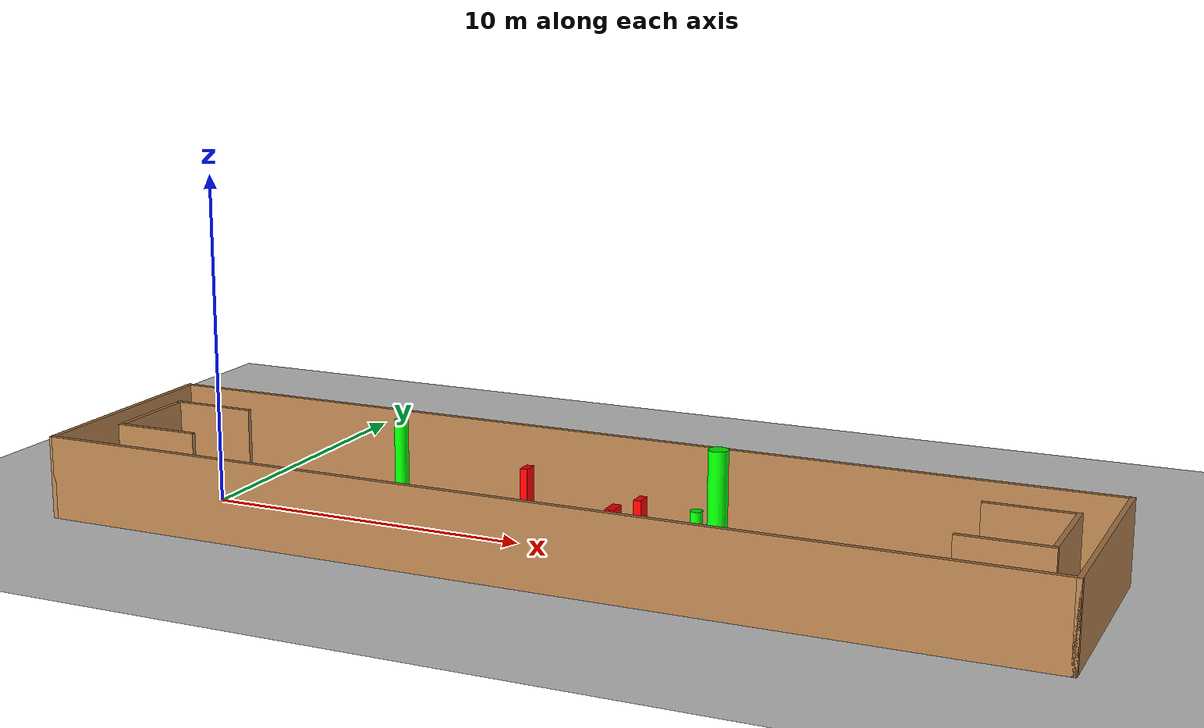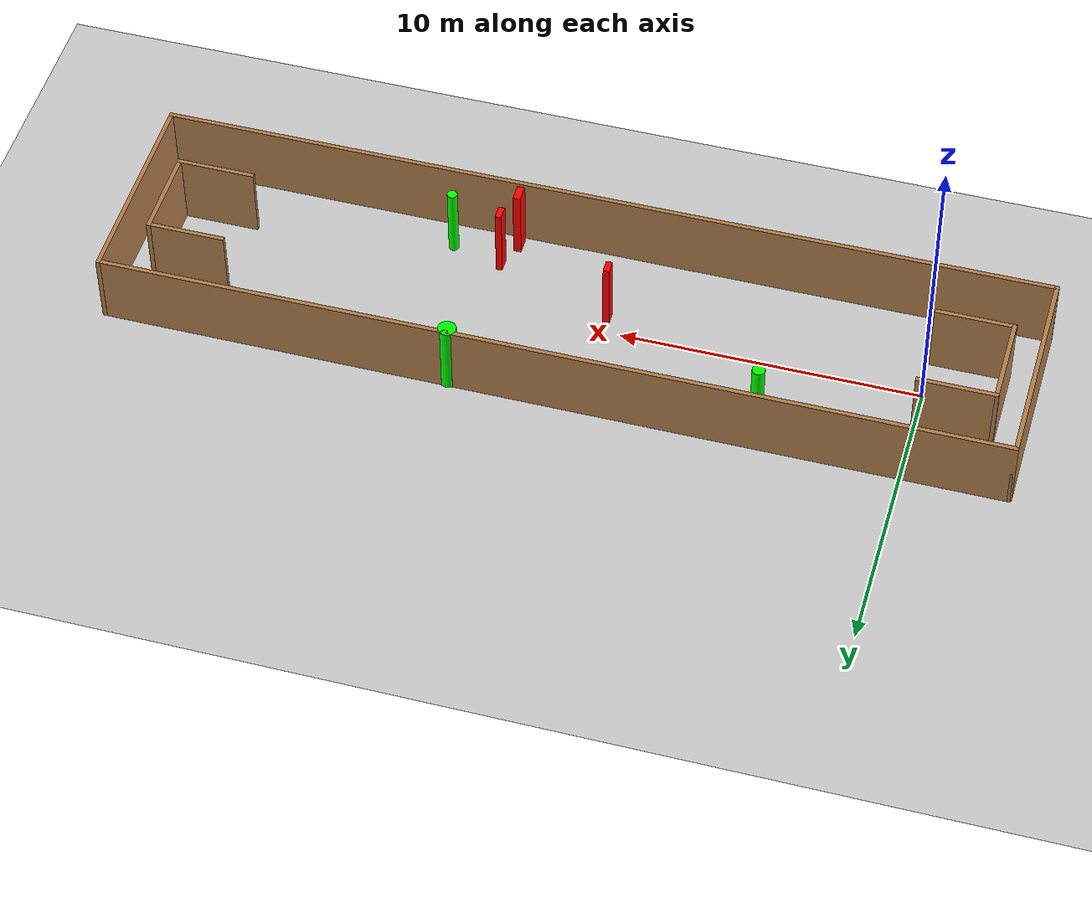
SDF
<sdf version="1.7">
 <world name="default">
  <light name="sun" type="directional">
   <pose>0 0 10 0 -0 0</pose>
   <diffuse>0.8 0.8 0.8 1</diffuse>
   <specular>0.2 0.2 0.2 1</specular>
   <attenuation>
    <range>1000</range>
    <constant>0.9</constant>
    <linear>0.01</linear>
    <quadratic>0.001</quadratic>
   </attenuation>
   <direction>-0.5 0.1 -0.9</direction>
   <spot><inner_angle>0</inner_angle><outer_angle>0</outer_angle><falloff>0</falloff></spot>
  </light>
  <model name="ground_plane">
   <static>1</static>
   <link name="link">
    <collision name="collision">
     <geometry><plane><normal>0 0 1</normal><size>100 100</size></plane></geometry>
     <surface>
      <contact><collide_bitmask>65535</collide_bitmask></contact>
      <friction><ode><mu>100</mu><mu2>50</mu2></ode></friction>
     </surface>
    </collision>
    <visual name="visual">
     <cast_shadows>0</cast_shadows>
     <geometry><plane><normal>0 0 1</normal><size>100 100</size></plane></geometry>
     <material>
      <script><uri>file://media/materials/scripts/gazebo.material</uri><name>Gazebo/Grey</name></script>
     </material>
    </visual>
   </link>
  </model>
  <gravity>0 0 -9.8</gravity>
  <magnetic_field>6e-06 2.3e-05 -4.2e-05</magnetic_field>
  <atmosphere type="adiabatic"/>
  <physics type="ode">
   <max_step_size>0.001</max_step_size>
   <real_time_factor>1</real_time_factor>
   <real_time_update_rate>1000</real_time_update_rate>
  </physics>
  <scene><ambient>0.4 0.4 0.4 1</ambient><background>0.7 0.7 0.7 1</background><shadows>1</shadows></scene>
  <spherical_coordinates>
   <surface_model>EARTH_WGS84</surface_model>
   <latitude_deg>0</latitude_deg>
   <longitude_deg>0</longitude_deg>
   <elevation>0</elevation>
   <heading_deg>0</heading_deg>
  </spherical_coordinates>
  <model name="my_base_walls">
   <link name="Wall_0">
    <collision name="Wall_0_Collision">
     <geometry><box><size>7.15 0.15 2.5</size></box></geometry>
     <pose>0 0 1.25 0 -0 0</pose>
    </collision>
    <visual name="Wall_0_Visual">
     <pose>0 0 1.25 0 -0 0</pose>
     <geometry><box><size>7.15 0.15 2.5</size></box></geometry>
     <material>
      <script><uri>file://media/materials/scripts/gazebo.material</uri><name>Gazebo/Wood</name></script>
      <ambient>1 1 1 1</ambient>
     </material>
     <meta><layer>0</layer></meta>
    </visual>
    <pose>-15 0 0 0 -0 1.5708</pose>
   </link>
   <link name="Wall_10">
    <collision name="Wall_10_Collision">
     <geometry><box><size>2.65 0.15 2.5</size></box></geometry>
     <pose>0 0 1.25 0 -0 0</pose>
    </collision>
    <visual name="Wall_10_Visual">
     <pose>0 0 1.25 0 -0 0</pose>
     <geometry><box><size>2.65 0.15 2.5</size></box></geometry>
     <material>
      <script><uri>file://media/materials/scripts/gazebo.material</uri><name>Gazebo/Wood</name></script>
      <ambient>1 1 1 1</ambient>
     </material>
     <meta><layer>0</layer></meta>
    </visual>
    <pose>-12.75 -1.5 0 0 -0 0</pose>
   </link>
   <link name="Wall_12">
    <collision name="Wall_12_Collision">
     <geometry><box><size>2.65 0.15 2.5</size></box></geometry>
     <pose>0 0 1.25 0 -0 0</pose>
    </collision>
    <visual name="Wall_12_Visual">
     <pose>0 0 1.25 0 -0 0</pose>
     <geometry><box><size>2.65 0.15 2.5</size></box></geometry>
     <material>
      <script><uri>file://media/materials/scripts/gazebo.material</uri><name>Gazebo/Wood</name></script>
      <ambient>1 1 1 1</ambient>
     </material>
     <meta><layer>0</layer></meta>
    </visual>
    <pose>-12.75 1.5 0 0 -0 0</pose>
   </link>
   <link name="Wall_14">
    <collision name="Wall_14_Collision">
     <geometry><box><size>3.15 0.15 2.5</size></box></geometry>
     <pose>0 0 1.25 0 -0 0</pose>
    </collision>
    <visual name="Wall_14_Visual">
     <pose>0 0 1.25 0 -0 0</pose>
     <geometry><box><size>3.15 0.15 2.5</size></box></geometry>
     <material>
      <script><uri>file://media/materials/scripts/gazebo.material</uri><name>Gazebo/Wood</name></script>
      <ambient>1 1 1 1</ambient>
     </material>
     <meta><layer>0</layer></meta>
    </visual>
    <pose>14 0 0 0 -0 -1.5708</pose>
   </link>
   <link name="Wall_15">
    <collision name="Wall_15_Collision">
     <geometry><box><size>2.65 0.15 2.5</size></box></geometry>
     <pose>0 0 1.25 0 -0 0</pose>
    </collision>
    <visual name="Wall_15_Visual">
     <pose>0 0 1.25 0 -0 0</pose>
     <geometry><box><size>2.65 0.15 2.5</size></box></geometry>
     <material>
      <script><uri>file://media/materials/scripts/gazebo.material</uri><name>Gazebo/Wood</name></script>
      <ambient>1 1 1 1</ambient>
     </material>
     <meta><layer>0</layer></meta>
    </visual>
    <pose>12.75 -1.5 0 0 -0 3.14159</pose>
   </link>
   <link name="Wall_17">
    <collision name="Wall_17_Collision">
     <geometry><box><size>2.65 0.15 2.5</size></box></geometry>
     <pose>0 0 1.25 0 -0 0</pose>
    </collision>
    <visual name="Wall_17_Visual">
     <pose>0 0 1.25 0 -0 0</pose>
     <geometry><box><size>2.65 0.15 2.5</size></box></geometry>
     <material>
      <script><uri>file://media/materials/scripts/gazebo.material</uri><name>Gazebo/Wood</name></script>
      <ambient>1 1 1 1</ambient>
     </material>
     <meta><layer>0</layer></meta>
    </visual>
    <pose>12.75 1.5 0 0 -0 3.14159</pose>
   </link>
   <link name="Wall_2">
    <collision name="Wall_2_Collision">
     <geometry><box><size>30.15 0.15 2.5</size></box></geometry>
     <pose>0 0 1.25 0 -0 0</pose>
    </collision>
    <visual name="Wall_2_Visual">
     <pose>0 0 1.25 0 -0 0</pose>
     <geometry><box><size>30.15 0.15 2.5</size></box></geometry>
     <material>
      <script><uri>file://media/materials/scripts/gazebo.material</uri><name>Gazebo/Wood</name></script>
      <ambient>1 1 1 1</ambient>
     </material>
     <meta><layer>0</layer></meta>
    </visual>
    <pose>-0 -3.5 0 0 -0 0</pose>
   </link>
   <link name="Wall_4">
    <collision name="Wall_4_Collision">
     <geometry><box><size>30.15 0.15 2.5</size></box></geometry>
     <pose>0 0 1.25 0 -0 0</pose>
    </collision>
    <visual name="Wall_4_Visual">
     <pose>0 0 1.25 0 -0 0</pose>
     <geometry><box><size>30.15 0.15 2.5</size></box></geometry>
     <material>
      <script><uri>file://media/materials/scripts/gazebo.material</uri><name>Gazebo/Wood</name></script>
      <ambient>1 1 1 1</ambient>
     </material>
     <meta><layer>0</layer></meta>
    </visual>
    <pose>-0 3.5 0 0 -0 0</pose>
   </link>
   <link name="Wall_6">
    <collision name="Wall_6_Collision">
     <geometry><box><size>7.15 0.15 2.5</size></box></geometry>
     <pose>0 0 1.25 0 -0 0</pose>
    </collision>
    <visual name="Wall_6_Visual">
     <pose>0 0 1.25 0 -0 0</pose>
     <geometry><box><size>7.15 0.15 2.5</size></box></geometry>
     <material>
      <script><uri>file://media/materials/scripts/gazebo.material</uri><name>Gazebo/Wood</name></script>
      <ambient>1 1 1 1</ambient>
     </material>
     <meta><layer>0</layer></meta>
    </visual>
    <pose>15 0 0 0 -0 -1.5708</pose>
   </link>
   <link name="Wall_9">
    <collision name="Wall_9_Collision">
     <geometry><box><size>3.15 0.15 2.5</size></box></geometry>
     <pose>0 0 1.25 0 -0 0</pose>
    </collision>
    <visual name="Wall_9_Visual">
     <pose>0 0 1.25 0 -0 0</pose>
     <geometry><box><size>3.15 0.15 2.5</size></box></geometry>
     <material>
      <script><uri>file://media/materials/scripts/gazebo.material</uri><name>Gazebo/Wood</name></script>
      <ambient>1 1 1 1</ambient>
     </material>
     <meta><layer>0</layer></meta>
    </visual>
    <pose>-14 0 0 0 -0 -1.5708</pose>
   </link>
   <static>1</static>
   <pose>11.5 0 0 0 -0 0</pose>
  </model>
  <model name="cylinder1">
   <static>1</static>
   <link name="link">
    <inertial>
     <mass>1</mass>
     <inertia><ixx>0.5</ixx><ixy>0</ixy><ixz>0</ixz><iyy>0.5</iyy><iyz>0</iyz><izz>1</izz></inertia>
    </inertial>
    <collision name="collision">
     <geometry><cylinder><radius>0.211635534762572</radius><length>2.5</length></cylinder></geometry>
    </collision>
    <visual name="visual">
     <geometry><cylinder><radius>0.211635534762572</radius><length>2.5</length></cylinder></geometry>
     <material>
      <ambient>0 1 0 1</ambient>
      <diffuse>0 1 0 1</diffuse>
      <specular>0.1 0.1 0.1 1</specular>
      <emissive>0 0 0 0</emissive>
     </material>
    </visual>
   </link>
   <pose>4.8954190577031405 2.455490628232388 1.25 0 0 0</pose>
  </model>
  <model name="cylinder2">
   <static>1</static>
   <link name="link">
    <inertial>
     <mass>1</mass>
     <inertia><ixx>0.5</ixx><ixy>0</ixy><ixz>0</ixz><iyy>0.5</iyy><iyz>0</iyz><izz>1</izz></inertia>
    </inertial>
    <collision name="collision">
     <geometry><cylinder><radius>0.16954034649316524</radius><length>2.5</length></cylinder></geometry>
    </collision>
    <visual name="visual">
     <geometry><cylinder><radius>0.16954034649316524</radius><length>2.5</length></cylinder></geometry>
     <material>
      <ambient>0 1 0 1</ambient>
      <diffuse>0 1 0 1</diffuse>
      <specular>0.1 0.1 0.1 1</specular>
      <emissive>0 0 0 0</emissive>
     </material>
    </visual>
   </link>
   <pose>16.372320510575307 -2.4028770668283848 1.25 0 0 0</pose>
  </model>
  <model name="cylinder3">
   <static>1</static>
   <link name="link">
    <inertial>
     <mass>1</mass>
     <inertia><ixx>0.5</ixx><ixy>0</ixy><ixz>0</ixz><iyy>0.5</iyy><iyz>0</iyz><izz>1</izz></inertia>
    </inertial>
    <collision name="collision">
     <geometry><cylinder><radius>0.30184817493330174</radius><length>2.5</length></cylinder></geometry>
    </collision>
    <visual name="visual">
     <geometry><cylinder><radius>0.30184817493330174</radius><length>2.5</length></cylinder></geometry>
     <material>
      <ambient>0 1 0 1</ambient>
      <diffuse>0 1 0 1</diffuse>
      <specular>0.1 0.1 0.1 1</specular>
      <emissive>0 0 0 0</emissive>
     </material>
    </visual>
   </link>
   <pose>14.827940751290958 3.338140348813365 1.25 0 0 0</pose>
  </model>
  <model name="box1">
   <static>1</static>
   <link name="link">
    <inertial>
     <mass>1</mass>
     <inertia><ixx>0.083</ixx><ixy>0</ixy><ixz>0</ixz><iyy>0.083</iyy><iyz>0</iyz><izz>0.083</izz></inertia>
    </inertial>
    <collision name="collision">
     <geometry><box><size>0.21627520562316654 0.4293222241800513 2.5</size></box></geometry>
    </collision>
    <visual name="visual">
     <geometry><box><size>0.21627520562316654 0.4293222241800513 2.5</size></box></geometry>
     <material>
      <ambient>1 0 0 1</ambient>
      <diffuse>1 0 0 1</diffuse>
      <specular>0.1 0.1 0.1 1</specular>
      <emissive>0 0 0 0</emissive>
     </material>
    </visual>
    <sensor name="my_contact" type="contact">
     <contact><collision>box_collision</collision><topic>__default_topic__</topic></contact>
    </sensor>
   </link>
   <pose>10.606242126794372 -0.5992558111839092 1.25 0 0 0</pose>
  </model>
  <model name="box2">
   <static>1</static>
   <link name="link">
    <inertial>
     <mass>1</mass>
     <inertia><ixx>0.083</ixx><ixy>0</ixy><ixz>0</ixz><iyy>0.083</iyy><iyz>0</iyz><izz>0.083</izz></inertia>
    </inertial>
    <collision name="collision">
     <geometry><box><size>0.21238695140984218 0.4572767426050729 2.5</size></box></geometry>
    </collision>
    <visual name="visual">
     <geometry><box><size>0.21238695140984218 0.4572767426050729 2.5</size></box></geometry>
     <material>
      <ambient>1 0 0 1</ambient>
      <diffuse>1 0 0 1</diffuse>
      <specular>0.1 0.1 0.1 1</specular>
      <emissive>0 0 0 0</emissive>
     </material>
    </visual>
    <sensor name="my_contact" type="contact">
     <contact><collision>box_collision</collision><topic>__default_topic__</topic></contact>
    </sensor>
   </link>
   <pose>14.630621631495476 -2.018782460595616 1.25 0 0 0</pose>
  </model>
  <model name="box3">
   <static>1</static>
   <link name="link">
    <inertial>
     <mass>1</mass>
     <inertia><ixx>0.083</ixx><ixy>0</ixy><ixz>0</ixz><iyy>0.083</iyy><iyz>0</iyz><izz>0.083</izz></inertia>
    </inertial>
    <collision name="collision">
     <geometry><box><size>0.25341721354207103 0.5616584762985486 2.5</size></box></geometry>
    </collision>
    <visual name="visual">
     <geometry><box><size>0.25341721354207103 0.5616584762985486 2.5</size></box></geometry>
     <material>
      <ambient>1 0 0 1</ambient>
      <diffuse>1 0 0 1</diffuse>
      <specular>0.1 0.1 0.1 1</specular>
      <emissive>0 0 0 0</emissive>
     </material>
    </visual>
    <sensor name="my_contact" type="contact">
     <contact><collision>box_collision</collision><topic>__default_topic__</topic></contact>
    </sensor>
   </link>
   <pose>14.281385255953927 -3.036623447951622 1.25 0 0 0</pose>
  </model>
 </world>
</sdf>
